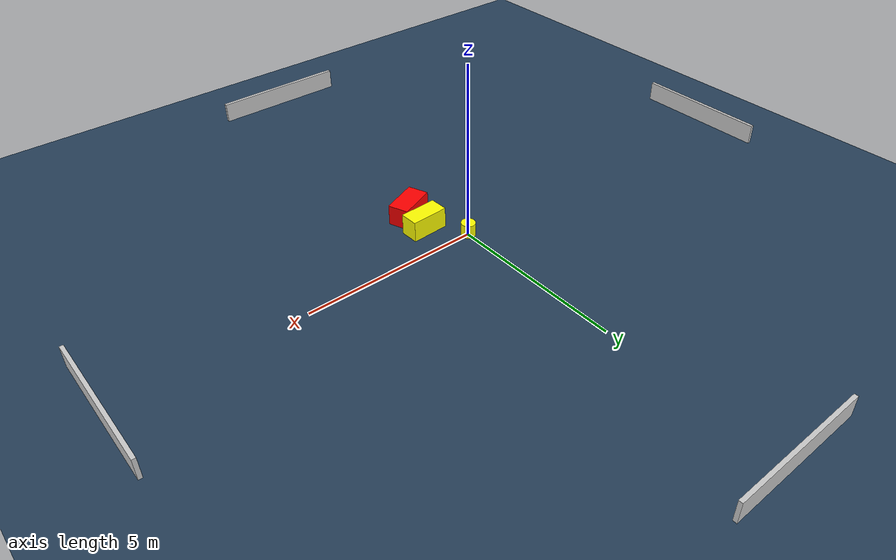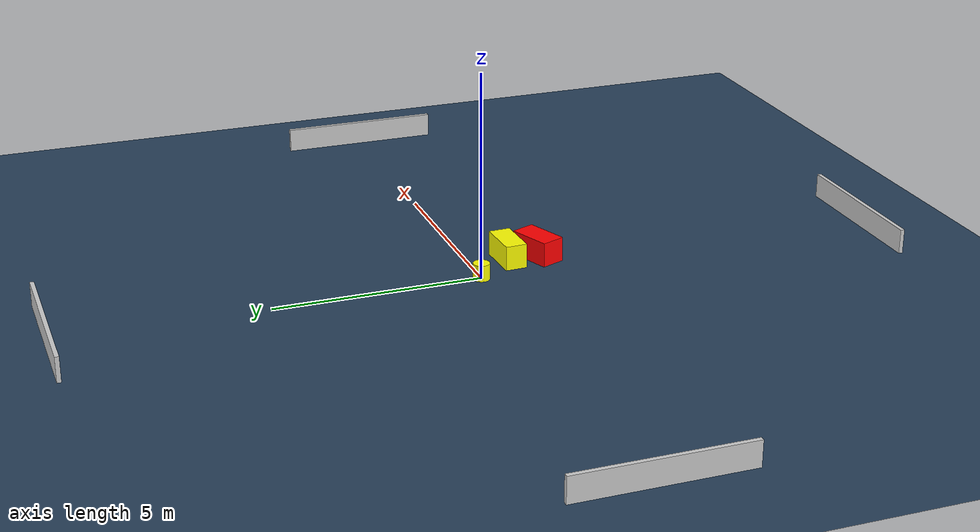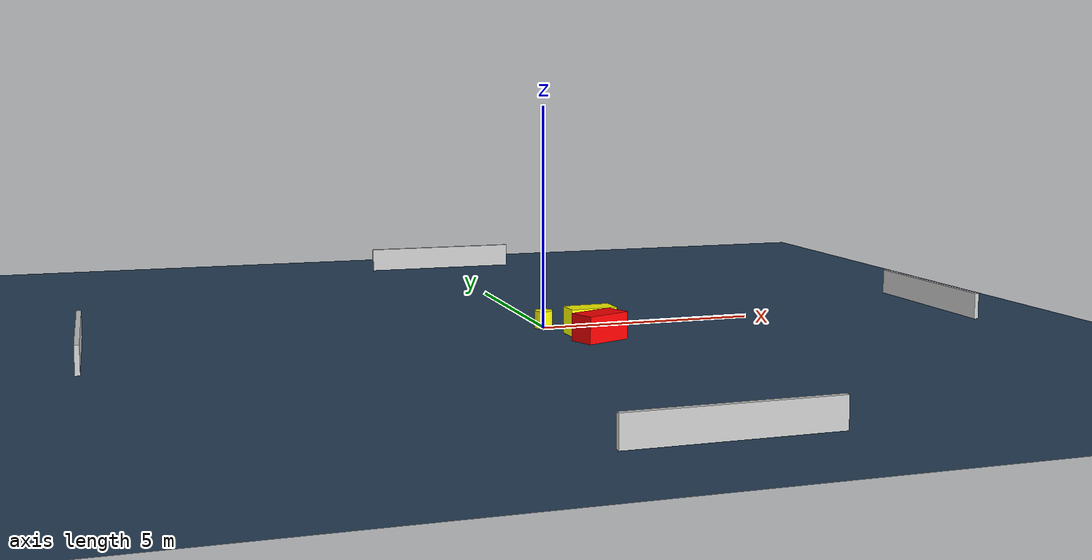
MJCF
<?xml version="1.0" ?>
<mujoco model="generated_environment">
  <option timestep="0.01" integrator="RK4" cone="elliptic"/>
  <default>
    <geom density="1"/>
  </default>
  <asset>
    <texture builtin="gradient" height="3072" name="skybox" rgb1="0.3 0.5 0.7" rgb2="0 0 0" type="skybox" width="512"/>
    <texture builtin="checker" height="300" name="groundplane" rgb1="0.2 0.3 0.4" rgb2="0.1 0.2 0.3" type="2d" width="300"/>
    <material name="groundplane" reflectance="0.2" texrepeat="5 5" texture="groundplane"/>
  </asset>
  <worldbody>
    <light dir="0 0 -1" directional="true" pos="0 0 1.5"/>
    <geom condim="3" friction="0.5 0.005 0.001" material="groundplane" name="floor" pos="0 0 0" size="0 0 0.05" type="plane"/>
    <body name="walls">
      <geom name="wall_1" condim="4" pos="-10.0 0.0 0.3" rgba="0.800000011920929 0.800000011920929 0.800000011920929 1.0" size="0.05 2.0 0.3" type="box"/>
      <geom name="wall_2" condim="4" pos="10.0 0.0 0.3" rgba="0.800000011920929 0.800000011920929 0.800000011920929 1.0" size="0.05 2.0 0.3" type="box"/>
      <geom name="wall_3" condim="4" pos="0.0 -10.0 0.3" rgba="0.800000011920929 0.800000011920929 0.800000011920929 1.0" size="2.0 0.05 0.3" type="box"/>
      <geom name="wall_4" condim="4" pos="0.0 10.0 0.3" rgba="0.800000011920929 0.800000011920929 0.800000011920929 1.0" size="2.0 0.05 0.3" type="box"/>
    </body>
    <body name="robot">
      <joint name="joint_x" type="slide" pos="0 0 0" axis="1 0 0"/>
      <joint name="joint_y" type="slide" pos="0 0 0" axis="0 1 0"/>
      <geom name="robot" type="cylinder" pos="0.0 0.0 0.2" size="0.2 0.2 0.0" mass="5.0" friction="1.0 0.005 0.0001" condim="4" rgba="1.0 1.0 0.0 1.0"/>
    </body>
    <body name="obstacle_1_movable">
      <geom name="obstacle_1_movable" condim="4" pos="0.7717233811185742 -0.9444424864416817 0.3" euler="0 0 272.3256576994558" friction="0.0 0.005 0.001" rgba="1.0 1.0 0.0 1.0" size="0.26337265447258557 0.5308409106396826 0.3" type="box" mass="0.1"/>
      <joint type="free"/>
    </body>
    <body name="obstacle_2_static">
      <geom name="obstacle_2_static" condim="4" pos="0.732613462367137 -1.6951607280829286 0.3" euler="0 0 201.8515683935873" friction="0.0 0.005 0.001" rgba="1.0 0.0 0.0 1.0" size="0.5362493085403396 0.29850295051640124 0.3" type="box"/>
    </body>
  </worldbody>
  <actuator>
    <motor name="actuator_x" joint="joint_x" gear="1" ctrlrange="-1 1"/>
    <motor name="actuator_y" joint="joint_y" gear="1" ctrlrange="-1 1"/>
  </actuator>
</mujoco>
